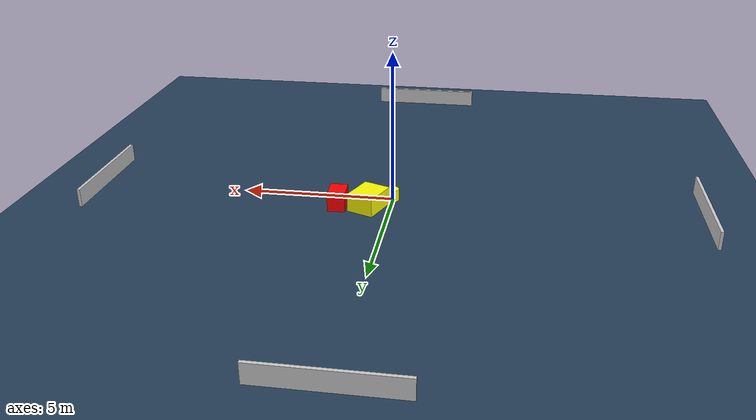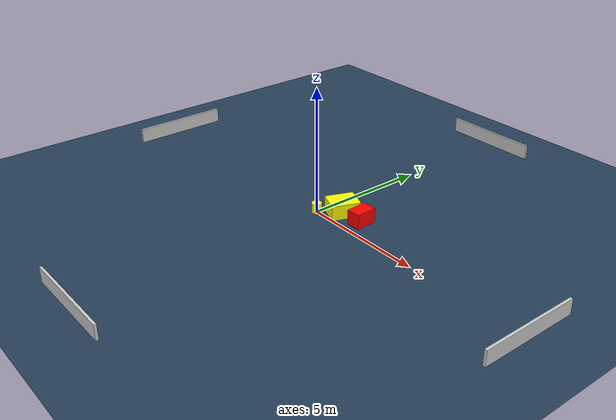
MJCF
<?xml version="1.0" ?>
<mujoco model="generated_environment">
  <option timestep="0.01" integrator="RK4" cone="elliptic"/>
  <default>
    <geom density="1"/>
  </default>
  <asset>
    <texture builtin="gradient" height="3072" name="skybox" rgb1="0.3 0.5 0.7" rgb2="0 0 0" type="skybox" width="512"/>
    <texture builtin="checker" height="300" name="groundplane" rgb1="0.2 0.3 0.4" rgb2="0.1 0.2 0.3" type="2d" width="300"/>
    <material name="groundplane" reflectance="0.2" texrepeat="5 5" texture="groundplane"/>
  </asset>
  <worldbody>
    <light dir="0 0 -1" directional="true" pos="0 0 1.5"/>
    <geom condim="3" friction="0.5 0.005 0.001" material="groundplane" name="floor" pos="0 0 0" size="0 0 0.05" type="plane"/>
    <body name="walls">
      <geom name="wall_1" condim="4" pos="-10.0 0.0 0.3" rgba="0.800000011920929 0.800000011920929 0.800000011920929 1.0" size="0.05 2.0 0.3" type="box"/>
      <geom name="wall_2" condim="4" pos="10.0 0.0 0.3" rgba="0.800000011920929 0.800000011920929 0.800000011920929 1.0" size="0.05 2.0 0.3" type="box"/>
      <geom name="wall_3" condim="4" pos="0.0 -10.0 0.3" rgba="0.800000011920929 0.800000011920929 0.800000011920929 1.0" size="2.0 0.05 0.3" type="box"/>
      <geom name="wall_4" condim="4" pos="0.0 10.0 0.3" rgba="0.800000011920929 0.800000011920929 0.800000011920929 1.0" size="2.0 0.05 0.3" type="box"/>
    </body>
    <body name="robot">
      <joint name="joint_x" type="slide" pos="0 0 0" axis="1 0 0"/>
      <joint name="joint_y" type="slide" pos="0 0 0" axis="0 1 0"/>
      <geom name="robot" type="cylinder" pos="0.0 0.0 0.2" size="0.2 0.2 0.0" mass="5.0" friction="1.0 0.005 0.0001" condim="4" rgba="1.0 1.0 0.0 1.0"/>
    </body>
    <body name="obstacle_1_movable">
      <geom name="obstacle_1_movable" condim="4" pos="0.6992617132312287 0.6961362591191812 0.3" euler="0 0 68.46093532805214" friction="0.0 0.005 0.001" rgba="1.0 1.0 0.0 1.0" size="0.5689805291203551 0.4550363527146422 0.3" type="box" mass="0.1"/>
      <joint type="free"/>
    </body>
    <body name="obstacle_2_static">
      <geom name="obstacle_2_static" condim="4" pos="1.7059653466405955 0.7404711419281167 0.3" euler="0 0 273.1142786483563" friction="0.0 0.005 0.001" rgba="1.0 0.0 0.0 1.0" size="0.4265861614375819 0.2856470043899685 0.3" type="box"/>
    </body>
  </worldbody>
  <actuator>
    <motor name="actuator_x" joint="joint_x" gear="1" ctrlrange="-1 1"/>
    <motor name="actuator_y" joint="joint_y" gear="1" ctrlrange="-1 1"/>
  </actuator>
</mujoco>
